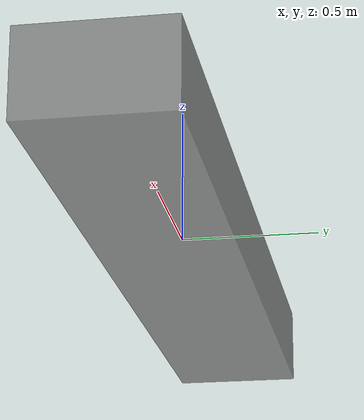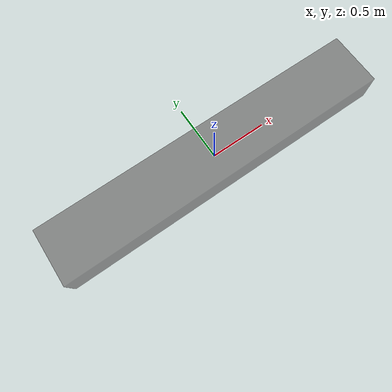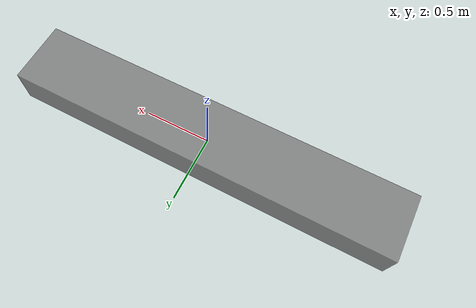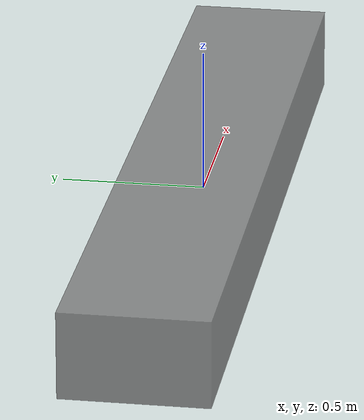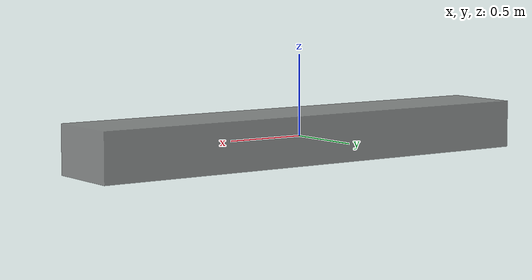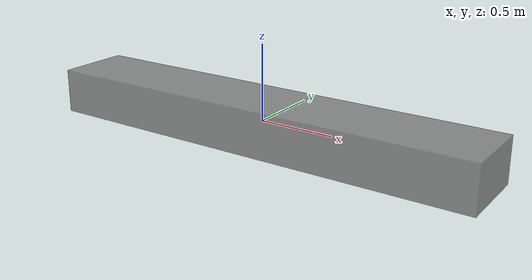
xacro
<?xml version="1.0"?>
<robot xmlns:xacro="http://www.ros.org/wiki/xacro" name="block">
<xacro:property name="m" value="10" />
<xacro:property name="l" value="3" />
<xacro:property name="w" value="0.5" />
<xacro:property name="h" value="0.3" />
<xacro:property name="Ih" value="${1/12*m*(w*w + l*l)}" />
<xacro:property name="Iw" value="${1/12*m*(h*h + l*l)}" />
<xacro:property name="Il" value="${1/12*m*(w*w + h*h)}" />

  <link name="base_link">
    <contact>
      <lateral_friction value="0.7"/>
      <spinning_friction value=".001"/>
    </contact>
    <inertial>
      <origin rpy="0 0 0" xyz="0 0 0"/>
      <mass value="${m}"/>
      <inertia ixx="${Il}" ixy="0" ixz="0" iyy="${Iw}" iyz="0" izz="${Ih}"/>
    </inertial>
    <visual>
      <origin rpy="0 0 0" xyz="0.0 0.0 0.0"/>
      <geometry>
        <box size="${l} ${w} ${h}"/>
      </geometry>
      <material name="blockmat">
        <color rgba="0.5 0.5 0.5 0.8"/>
      </material>
    </visual>
    <collision>
      <origin rpy="0 0 0" xyz="0.0 0.0 0.0"/>
      <geometry>
        <box size="${l} ${w} ${h}"/>
      </geometry>
    </collision>
 </link>

</robot>
